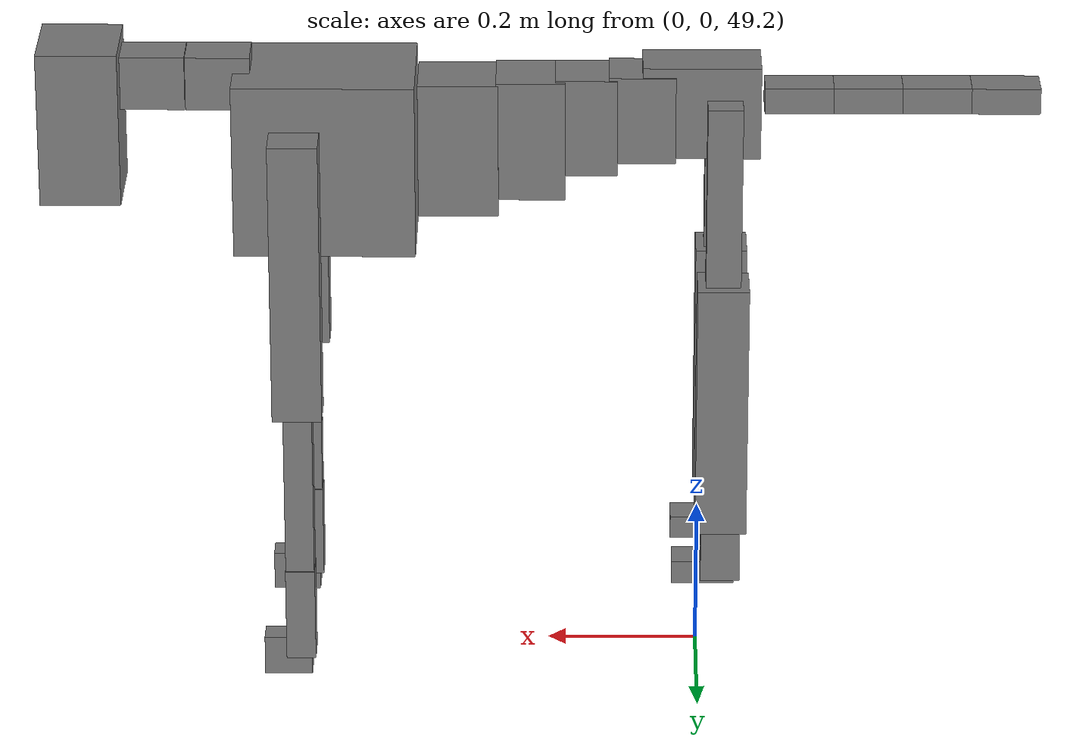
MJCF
<mujoco model="dog">

    <default>
        <joint armature="0.02" stiffness="1" damping="0.2" limited="true"/>
        <geom condim="3" friction="1 0.05 0.05" margin="0.01"/>
        <motor ctrllimited="true" ctrlrange="-1.0 1.0" forcelimited="true" gear="50"/>
    </default>

    <compiler inertiafromgeom="true" angle="radian"/>

    <option timestep="0.016" iterations="50" tolerance="1e-10" solver="Newton" jacobian="dense" cone="pyramidal"/>

    <size nconmax="20000" njmax="60000" nstack="5000000"/>
    <visual>
        <map force="0.1" zfar="30"/>
        <rgba haze="0.15 0.25 0.35 1"/>
        <quality shadowsize="2048"/>
        <global offwidth="800" offheight="800"/>
    </visual>

    <asset>
        <texture type="skybox" builtin="gradient" rgb1="0.3 0.5 0.7" rgb2="0 0 0" width="512" height="512"/>
        <texture name="texplane" type="2d" builtin="checker" rgb1=".2 .3 .4" rgb2=".1 0.15 0.2" width="512" height="512"
                 mark="cross" markrgb=".8 .8 .8"/>
        <texture name="texgeom" type="cube" builtin="flat" mark="cross" width="127" height="1278" rgb1="0.8 0.6 0.4"
                 rgb2="0.8 0.6 0.4" markrgb="1 1 1" random="0.01"/>

        <material name="matplane" reflectance="0.3" texture="texplane" texrepeat="1 1" texuniform="true"/>
        <material name="matgeom" texture="texgeom" texuniform="true" rgba="0.8 0.6 .4 1"/>
    </asset>

    <worldbody>
        <geom name="floor" pos="0 0 0" size="0 0 .25" type="plane" material="matplane" condim="3"/>

        <light directional="false" diffuse=".2 .2 .2" specular="0 0 0" pos="0 0 5" dir="0 0 -1" castshadow="false"/>
        <light mode="targetbodycom" target="torso" directional="false" diffuse=".8 .8 .8" specular="0.3 0.3 0.3"
               pos="0 0 4.0" dir="0 0 -1"/>

        <body name="root" pos="0 0 50">
            <freejoint name="root_1"/>
            <geom type="box" pos="0 0 -0.02" size="0.0774  0.0358  0.063" density="2030"/>

            <body name="spine1" pos="0.054 0 0">
                <joint name="spine1_y" axis="0 1 0" range="0 0.7" limited="true"/>
                <geom type="box" pos="0.02375 0 -0.03" size="0.04375  0.0375  0.05985" density="2030"/>

                <body name="spine2" pos="0.0612 0 0">
                    <joint name="spine2_y" axis="0 1 0" range="-0.15 0.15" limited="true"/>
                    <geom type="box" pos="0.03555  0  -0.04" size="0.04055  0.039  0.06615" density="2030"/>

                    <body name="spine3" pos="0.0730 0 0">
                        <joint name="spine3_y" axis="0 1 0" range="-0.15 0.15" limited="true"/>
                        <geom type="box" pos="0.03555  0  -0.057" size="0.04555  0.0445  0.081" density="2030"/>

                        <body name="spine4" pos="0.0780 0 0">
                            <joint name="spine4_y" axis="0 1 0" range="-0.15 0.15" limited="true"/>
                            <geom type="box" pos="0.05265  0  -0.07" size="0.05265  0.045  0.09135" density="2030"/>

                            <body name="torso" pos="0.1082 0 0">
                                <joint name="torso_y" axis="0 1 0" range="-0.15 0.15" limited="true"/>
                                <geom type="box" pos="0.11925  0  -0.085" size="0.11925  0.085  0.11745"
                                      density="2030"/>

                                <body name="neck1" pos="0.2160  0   0.0180">
                                    <joint name="neck1_y" axis="0 1 0" range="-1.2  -1" limited="true"/>
                                    <geom type="box" pos="0.0423  0  0" size="0.0423  0.03  0.036" density="2325"/>

                                    <body name="neck2" pos="0.0853  0  0">
                                        <joint name="neck2_y" axis="0 1 0" range="0.1  0" limited="true"/>
                                        <geom type="box" pos="0.0423  0  0" size="0.0423  0.03  0.036" density="2325"/>

                                        <body name="head" pos="0.0853  0  0">
                                            <joint name="head_y" axis="0 1 0" range="-0.3  -0.2" limited="true"/>
                                            <geom type="box" pos="0.0531  0  -0.055" size="0.0531  0.06  0.1044"
                                                  density="4030"/>

                                        </body>
                                    </body>
                                </body>

                                <body name="front_shoulder" pos="0.156  0   -0.0480">
                                    <joint name="front_shoulder_y" axis="0 1 0" range="-1 1.5" limited="true"/>
                                    <geom type="box" pos="0 0.13 -0.1666" size="0.0327  0.0280  0.1932" density="1158"/>
                                    <geom type="box" pos="0 -0.13 -0.1666" size="0.0327  0.0280  0.1932"
                                          density="1158"/>

                                    <body name="front_elbow" pos="0  0  -0.3332">
                                        <joint name="front_elbow_y" axis="0 1 0" range="-2 0" limited="true"/>
                                        <geom type="box" pos="0 0.13 -0.1311" size="0.0190  0.0194  0.1311"
                                              density="1081"/>
                                        <geom type="box" pos="0 -0.13 -0.1311" size="0.0190  0.0194  0.1311"
                                              density="1081"/>

                                        <body name="front_wrist" pos="0  0  -0.2621">
                                            <joint name="front_wrist_y" axis="0 1 0" range="-0.2 0" limited="true"/>
                                            <geom type="box" pos="0 0.13 -0.0507" size="0.0195  0.0217  0.0639"
                                                  density="1664"/>
                                            <geom type="box" pos="0 -0.13 -0.0507" size="0.0195  0.0217  0.0639"
                                                  density="1664"/>

                                            <body name="front_finger_end" pos="0  0  -0.1015">
                                                <joint name="front_finger_y" axis="0 1 0" range="-0.4 1"
                                                       limited="true"/>
                                                <geom type="box" pos="0.0172  0.13  -0.0115"
                                                      size="0.0316  0.0172  0.0265" density="1515"/>
                                                <geom type="box" pos="0.0172  -0.13  -0.0115"
                                                      size="0.0316  0.0172  0.0265" density="1515"/>

                                            </body>

                                        </body>
                                    </body>
                                </body>

                            </body>
                        </body>
                    </body>
                </body>
            </body>

            <body name="back_hip" pos="-0.03 0 -0.018">
                <joint name="back_hip_y" axis="0 1 0" range="-1.5 0.3" limited="true"/>
                <geom type="box" pos="0 0.07 -0.1210" size="0.0231  0.0181  0.1438" density="1154"/>
                <geom type="box" pos="0 -0.07 -0.1210" size="0.0231  0.0181  0.1438" density="1154"/>

                <body name="back_knee" pos="0  0  -0.2419">
                    <joint name="back_knee_y" axis="0 1 0" range="0 2.8" limited="true"/>
                    <geom type="box" pos="0 0.07 -0.1600" size="0.0340  0.0335  0.1756" density="1227"/>
                    <geom type="box" pos="0 -0.07 -0.1600" size="0.0340  0.0335  0.1756" density="1227"/>

                    <body name="back_ankle" pos="0  0  -0.3201">
                        <joint name="back_ankle_y" axis="0 1 0" range="-2.2 0" limited="true"/>
                        <geom type="box" pos="0 0.07 -0.0380" size="0.0261  0.0261  0.0493" density="1284"/>
                        <geom type="box" pos="0 -0.07 -0.0380" size="0.0261  0.0261  0.0493" density="1284"/>

                        <body name="back_toe_end" pos="0  0  -0.0761">
                            <joint name="back_toe_y" axis="0 1 0" range="-0.4 1" limited="true"/>
                            <geom type="box" pos="0.0228  0.07  -0.0007" size="0.0418  0.0228  0.0157" density="1515"/>
                            <geom type="box" pos="0.0228  -0.07  -0.0007" size="0.0418  0.0228  0.0157" density="1515"/>

                        </body>
                    </body>
                </body>
            </body>

            <body name="tail1" pos="-0.074 0 -0.006">
                <joint name="tail1_y" axis="0 1 0" range="-0.2 0.2" limited="true"/>
                <geom type="box" pos="-0.0536  0  0" size="0.045  0.025  0.0175" density="1587"/>

                <body name="tail2" pos="-0.09 0 0">
                    <joint name="tail2_y" axis="0 1 0" range="-0.2 0.2" limited="true"/>
                    <geom type="box" pos="-0.0536  0  0" size="0.045  0.025  0.0175" density="1587"/>

                    <body name="tail3" pos="-0.09 0 0">
                        <joint name="tail3_y" axis="0 1 0" range="-0.2 0.2" limited="true"/>
                        <geom type="box" pos="-0.0536  0  0" size="0.045  0.025  0.0175" density="1587"/>

                        <body name="tail4" pos="-0.09 0 0">
                            <joint name="tail4_y" axis="0 1 0" range="-0.2 0.2" limited="true"/>
                            <geom type="box" pos="-0.0536  0  0" size="0.045  0.025  0.0175" density="1587"/>

                        </body>
                    </body>
                </body>
            </body>
        </body>
    </worldbody>

    <actuator>
        <motor joint="spine1_y" forcerange="-150 150     "/>
        <motor joint="spine2_y" forcerange="-150 150     "/>
        <motor joint="spine3_y" forcerange="-150 150     "/>
        <motor joint="spine4_y" forcerange="-150 150     "/>
        <motor joint="torso_y" forcerange="-150 150     "/>
        <motor joint="neck1_y" forcerange="-100 100       "/>
        <motor joint="neck2_y" forcerange="-100 100       "/>
        <motor joint="head_y" forcerange="-150 150       "/>
        <motor joint="front_shoulder_y" forcerange="-106.90 179.61"/>
        <motor joint="front_elbow_y" forcerange="-100.54 140.68"/>
        <motor joint="front_wrist_y" forcerange="-119.48 54.17"/>
        <motor joint="front_finger_y" forcerange="-23.97 28.02"/>
        <motor joint="back_hip_y" forcerange="-201.59 240.14"/>
        <motor joint="back_knee_y" forcerange="-314.55 372.81"/>
        <motor joint="back_angle_y" forcerange="-198.42 118.93"/>
        <motor joint="back_toe_y" forcerange="-77.42 25.14"/>
        <motor joint="tail1_y" forcerange="-50 50     "/>
        <motor joint="tail2_y" forcerange="-50 50     "/>
        <motor joint="tail3_y" forcerange="-50 50     "/>
        <motor joint="tail4_y" forcerange="-50 50     "/>
    </actuator>
</mujoco>
